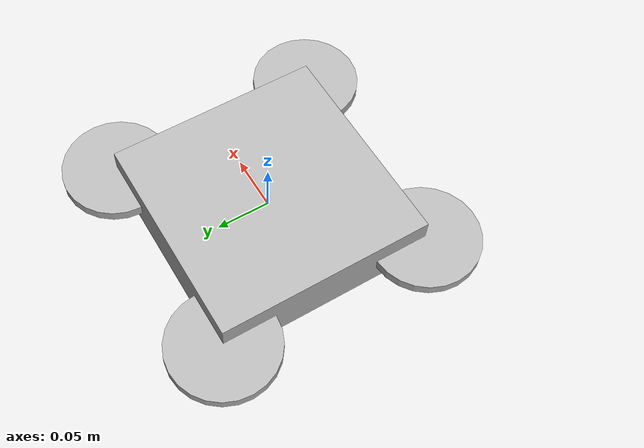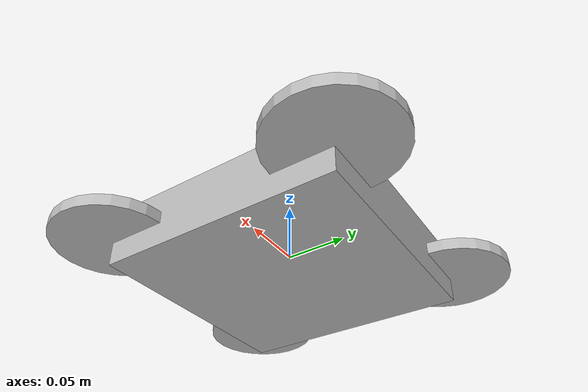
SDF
<?xml version="1.0"?>
<sdf version="1.8">
  <model name="simple_quadcopter">
    <link name="base_link">
      <inertial>
        <mass>1.0</mass>
        <inertia>
          <ixx>0.01</ixx>
          <ixy>0.0</ixy>
          <ixz>0.0</ixz>
          <iyy>0.01</iyy>
          <iyz>0.0</iyz>
          <izz>0.01</izz>
        </inertia>
      </inertial>
      <collision name="collision">
        <geometry>
          <box>
            <size>0.2 0.2 0.05</size>
          </box>
        </geometry>
      </collision>
      <visual name="visual">
        <geometry>
          <box>
            <size>0.2 0.2 0.05</size>
          </box>
        </geometry>
      </visual>
    </link>

    <link name="rotor_0_link">
      <pose>0.1 0.1 0.0 0 0 0</pose>
      <inertial>
        <mass>0.01</mass>
        <inertia>
          <ixx>0.0001</ixx>
          <ixy>0.0</ixy>
          <ixz>0.0</ixz>
          <iyy>0.0001</iyy>
          <iyz>0.0</iyz>
          <izz>0.0001</izz>
        </inertia>
      </inertial>
      <collision name="collision">
        <geometry>
          <cylinder>
            <radius>0.05</radius>
            <length>0.01</length>
          </cylinder>
        </geometry>
      </collision>
      <visual name="visual">
        <geometry>
          <cylinder>
            <radius>0.05</radius>
            <length>0.01</length>
          </cylinder>
        </geometry>
      </visual>
    </link>
    <joint name="rotor_0_joint" type="revolute">
      <parent>base_link</parent>
      <child>rotor_0_link</child>
      <axis>
        <xyz>0 0 1</xyz>
      </axis>
    </joint>

    <link name="rotor_1_link">
      <pose>0.1 -0.1 0.0 0 0 0</pose>
      <inertial>
        <mass>0.01</mass>
        <inertia>
          <ixx>0.0001</ixx>
          <ixy>0.0</ixy>
          <ixz>0.0</ixz>
          <iyy>0.0001</iyy>
          <iyz>0.0</iyz>
          <izz>0.0001</izz>
        </inertia>
      </inertial>
      <collision name="collision">
        <geometry>
          <cylinder>
            <radius>0.05</radius>
            <length>0.01</length>
          </cylinder>
        </geometry>
      </collision>
      <visual name="visual">
        <geometry>
          <cylinder>
            <radius>0.05</radius>
            <length>0.01</length>
          </cylinder>
        </geometry>
      </visual>
    </link>
    <joint name="rotor_1_joint" type="revolute">
      <parent>base_link</parent>
      <child>rotor_1_link</child>
      <axis>
        <xyz>0 0 1</xyz>
      </axis>
    </joint>

    <link name="rotor_2_link">
      <pose>-0.1 -0.1 0.0 0 0 0</pose>
      <inertial>
        <mass>0.01</mass>
        <inertia>
          <ixx>0.0001</ixx>
          <ixy>0.0</ixy>
          <ixz>0.0</ixz>
          <iyy>0.0001</iyy>
          <iyz>0.0</iyz>
          <izz>0.0001</izz>
        </inertia>
      </inertial>
      <collision name="collision">
        <geometry>
          <cylinder>
            <radius>0.05</radius>
            <length>0.01</length>
          </cylinder>
        </geometry>
      </collision>
      <visual name="visual">
        <geometry>
          <cylinder>
            <radius>0.05</radius>
            <length>0.01</length>
          </cylinder>
        </geometry>
      </visual>
    </link>
    <joint name="rotor_2_joint" type="revolute">
      <parent>base_link</parent>
      <child>rotor_2_link</child>
      <axis>
        <xyz>0 0 1</xyz>
      </axis>
    </joint>

    <link name="rotor_3_link">
      <pose>-0.1 0.1 0.0 0 0 0</pose>
      <inertial>
        <mass>0.01</mass>
        <inertia>
          <ixx>0.0001</ixx>
          <ixy>0.0</ixy>
          <ixz>0.0</ixz>
          <iyy>0.0001</iyy>
          <iyz>0.0</iyz>
          <izz>0.0001</izz>
        </inertia>
      </inertial>
      <collision name="collision">
        <geometry>
          <cylinder>
            <radius>0.05</radius>
            <length>0.01</length>
          </cylinder>
        </geometry>
      </collision>
      <visual name="visual">
        <geometry>
          <cylinder>
            <radius>0.05</radius>
            <length>0.01</length>
          </cylinder>
        </geometry>
      </visual>
    </link>
    <joint name="rotor_3_joint" type="revolute">
      <parent>base_link</parent>
      <child>rotor_3_link</child>
      <axis>
        <xyz>0 0 1</xyz>
      </axis>
    </joint>

  </model>
</sdf>
